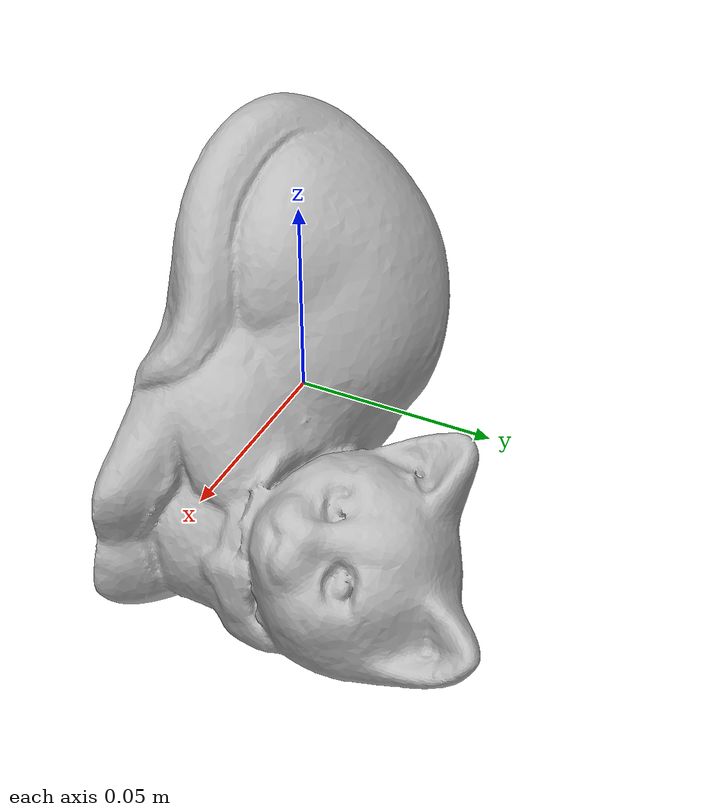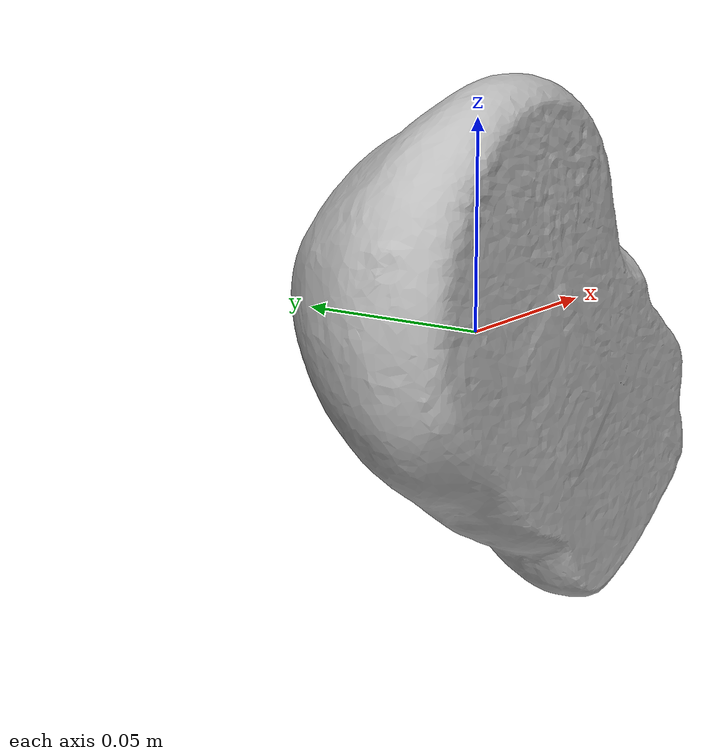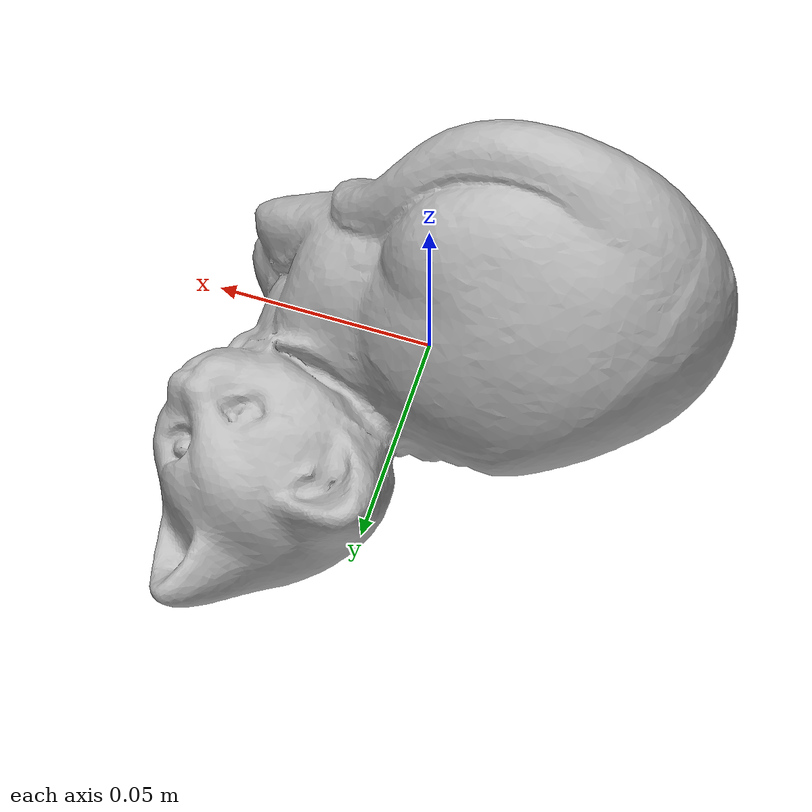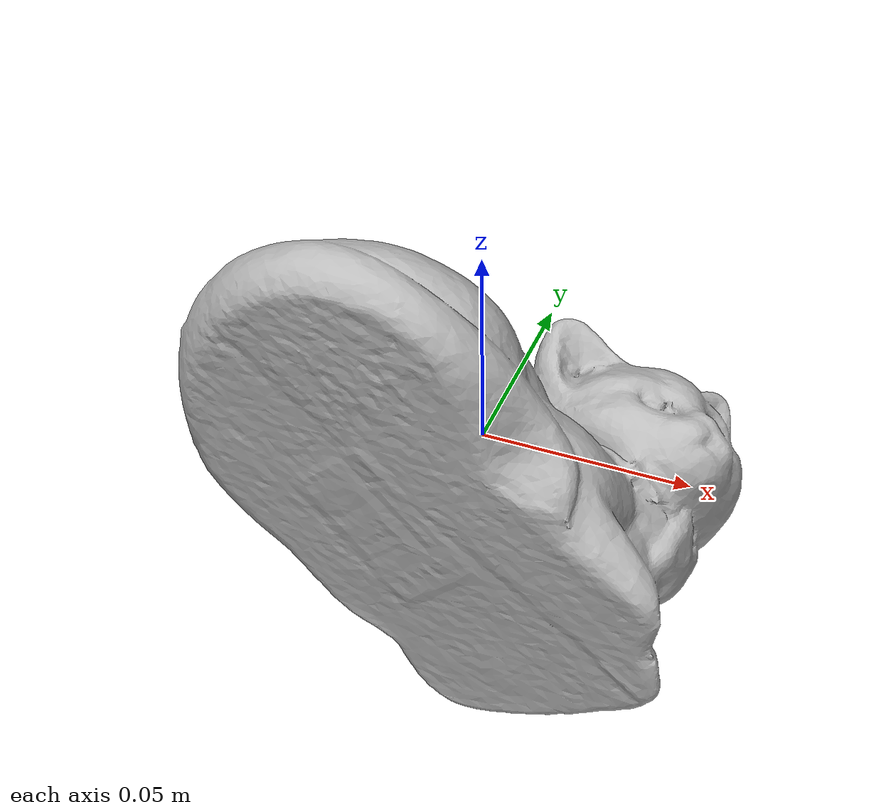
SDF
<?xml version='1.0'?>
<sdf version="1.4">
  <model name="CatLying">
    <static>false</static>
    <link name="link">
      <inertial>
        <pose>0.001282618733714152 0.0004554363297994957 -0.006348741014522898 -0.868375245209851 0.40698779514307515 2.2742472540381358</pose>
        <mass>0.05459735451099533</mass>
        <inertia>
          <ixx>8.686824845274282e-05</ixx>
          <ixy>-6.7756853961461344e-21</ixy>
          <ixz>-9.963011786075279e-21</ixz>
          <iyy>8.39397979681355e-05</iyy>
          <iyz>-2.3547160389040877e-21</iyz>
          <izz>4.2076975603777874e-05</izz>
        </inertia>
      </inertial>
      <collision name="collision">
        <geometry>
          <mesh>
            <!-- Use a downsampled mesh for collisions -->
            <uri>model:///CatLying/CatLying_250_collision.obj</uri>
	        </mesh>
        </geometry>
        <surface>
      </surface>
      </collision>
      <visual name="visual">
        <geometry>
          <mesh>
            <uri>model:///CatLying/CatLying_25k_tex.obj</uri>
	        </mesh>
        </geometry>
        <material>
          <script>
            <uri>model:///CatLying/CatLying.material</uri>
            <name>CatLying</name>
          </script>
        </material>
      </visual>
    </link>
  </model>
</sdf>
